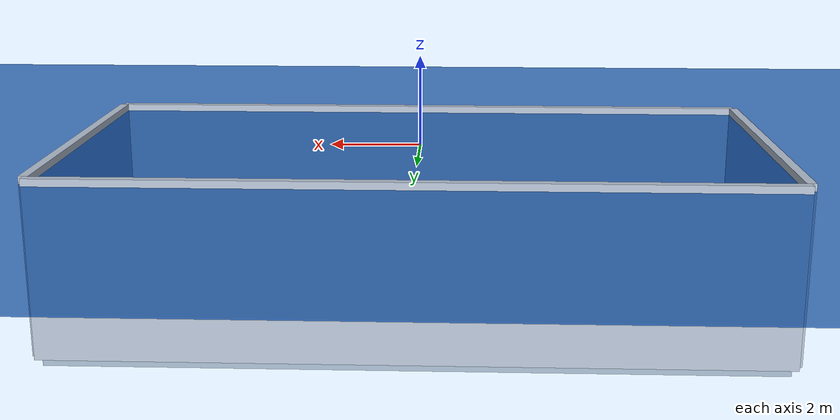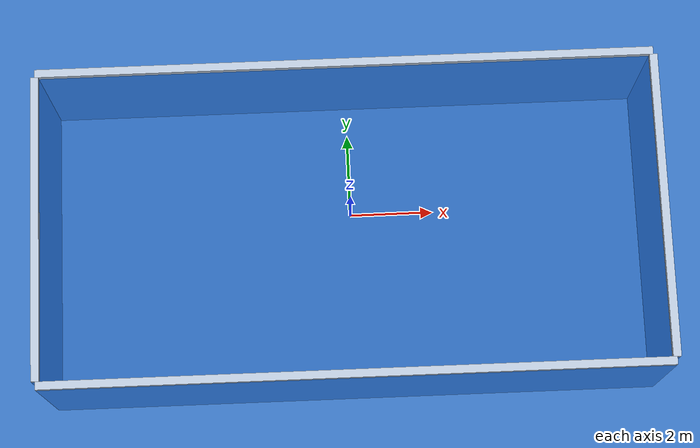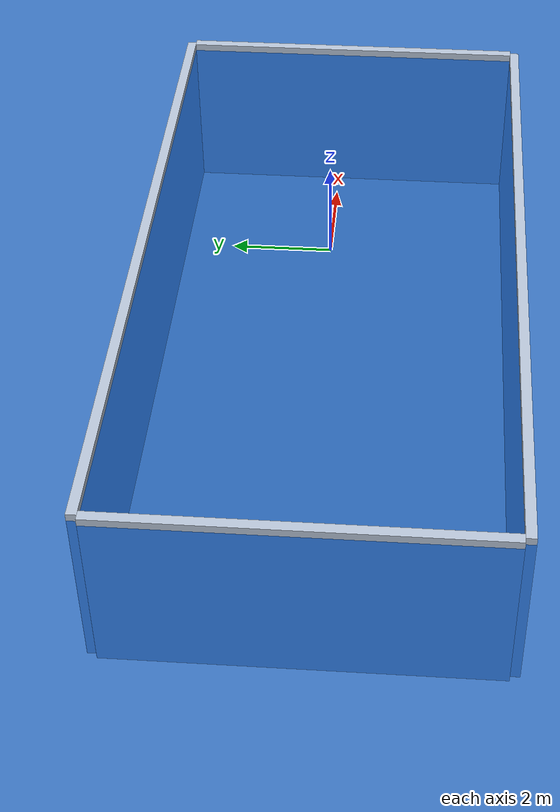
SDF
<?xml version="1.0" ?>
<sdf version="1.10">
  <world name="range_marker_pool">
    <plugin filename="gz-sim-physics-system" name="gz::sim::systems::Physics"/>
    <plugin filename="gz-sim-user-commands-system" name="gz::sim::systems::UserCommands"/>
    <plugin filename="gz-sim-scene-broadcaster-system" name="gz::sim::systems::SceneBroadcaster"/>
    <plugin filename="gz-sim-sensors-system" name="gz::sim::systems::Sensors">
      <render_engine>ogre2</render_engine>
    </plugin>
    <plugin filename="gz-sim-imu-system" name="gz::sim::systems::Imu"/>
    <plugin filename="gz-sim-navsat-system" name="gz::sim::systems::NavSat"/>
    <plugin filename="gz-sim-magnetometer-system" name="gz::sim::systems::Magnetometer"/>

    <physics type="ignored">
      <max_step_size>0.004</max_step_size>
      <real_time_factor>1.0</real_time_factor>
      <real_time_update_rate>250</real_time_update_rate>
    </physics>

    <scene>
      <ambient>0.01 0.01 0.01 1.0</ambient>
      <background>0.70 0.84 0.95 1.0</background>
      <grid>false</grid>
      <shadows>true</shadows>
    </scene>

    <light type="directional" name="sun">
      <pose>50 0 150 0 0 0</pose>
      <diffuse>1 1 1 1</diffuse>
      <specular>0.1 0.1 0.1 1</specular>
      <direction>0.3 0.3 -1</direction>
      <cast_shadows>false</cast_shadows>
    </light>

    <light type="point" name="tank_fill">
      <pose>0 0 8 0 0 0</pose>
      <diffuse>0.85 0.9 1.0 1</diffuse>
      <specular>0.15 0.15 0.15 1</specular>
      <attenuation>
        <range>30</range>
        <constant>0.6</constant>
        <linear>0.02</linear>
        <quadratic>0.002</quadratic>
      </attenuation>
      <cast_shadows>false</cast_shadows>
    </light>

    <include>
      <uri>model://tank</uri>
      <pose>-6.42 0 0 0 0 0</pose>
    </include>

    <include>
      <uri>model://water_surface</uri>
      <pose>0 0 0 0 0 0</pose>
    </include>

    <!-- The descriptor-driven marker is spawned by ROS launch. Pool
         registration and inspection fixtures are absent from this scene. -->
  </world>
</sdf>

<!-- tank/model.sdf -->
<sdf version="1.6">
  <model name="tank">
    <static>true</static>
    <link name="tank_floor_link">
      <pose>6.42 0.0 -3.76 0 0 0</pose>
      <collision name="floor_collision">
        <geometry>
          <box>
            <size>15.24 7.62 0.2</size>
          </box>
        </geometry>
      </collision>
      <visual name="floor_visual">
        <geometry>
          <box>
            <size>15.24 7.62 0.2</size>
          </box>
        </geometry>
        <material>
          <ambient>0.58 0.66 0.74 1</ambient>
          <diffuse>0.66 0.74 0.82 1</diffuse>
        </material>
      </visual>
    </link>
    <link name="tank_wall_north_link">
      <pose>6.42 3.91 -1.755 0 0 0</pose>
      <collision name="wall_collision">
        <geometry>
          <box>
            <size>15.44 0.20 3.81</size>
          </box>
        </geometry>
      </collision>
      <visual name="wall_visual">
        <geometry>
          <box>
            <size>15.44 0.20 3.81</size>
          </box>
        </geometry>
        <material>
          <ambient>0.62 0.67 0.74 1</ambient>
          <diffuse>0.72 0.77 0.84 1</diffuse>
        </material>
      </visual>
    </link>
    <link name="tank_wall_south_link">
      <pose>6.42 -3.91 -1.755 0 0 0</pose>
      <collision name="wall_collision">
        <geometry>
          <box>
            <size>15.44 0.20 3.81</size>
          </box>
        </geometry>
      </collision>
      <visual name="wall_visual">
        <geometry>
          <box>
            <size>15.44 0.20 3.81</size>
          </box>
        </geometry>
        <material>
          <ambient>0.62 0.67 0.74 1</ambient>
          <diffuse>0.72 0.77 0.84 1</diffuse>
        </material>
      </visual>
    </link>
    <link name="tank_wall_east_link">
      <pose>14.14 0.0 -1.755 0 0 0</pose>
      <collision name="wall_collision">
        <geometry>
          <box>
            <size>0.20 7.62 3.81</size>
          </box>
        </geometry>
      </collision>
      <visual name="wall_visual">
        <geometry>
          <box>
            <size>0.20 7.62 3.81</size>
          </box>
        </geometry>
        <material>
          <ambient>0.62 0.67 0.74 1</ambient>
          <diffuse>0.72 0.77 0.84 1</diffuse>
        </material>
      </visual>
    </link>
    <link name="tank_wall_west_link">
      <pose>-1.30 0.0 -1.755 0 0 0</pose>
      <collision name="wall_collision">
        <geometry>
          <box>
            <size>0.20 7.62 3.81</size>
          </box>
        </geometry>
      </collision>
      <visual name="wall_visual">
        <geometry>
          <box>
            <size>0.20 7.62 3.81</size>
          </box>
        </geometry>
        <material>
          <ambient>0.62 0.67 0.74 1</ambient>
          <diffuse>0.72 0.77 0.84 1</diffuse>
        </material>
      </visual>
    </link>
  </model>
</sdf>

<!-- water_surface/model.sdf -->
<sdf version="1.6">
  <model name="water_surface">
    <static>true</static>

    <link name="water_surface_link">
      <visual name="water_surface_visual">
        <pose>0 0 -0.02 0 0 0</pose>
        <geometry>
          <box>
            <size>2000 2000 0.02</size>
          </box>
        </geometry>
        <material>
          <ambient>0.0 0.3 0.7 1.0</ambient>
          <diffuse>0.0 0.3 0.7 0.7</diffuse>
          <specular>0.1 0.1 0.1 1.0</specular>
        </material>
        <transparency>0.25</transparency>
      </visual>
    </link>
  </model>
</sdf>
